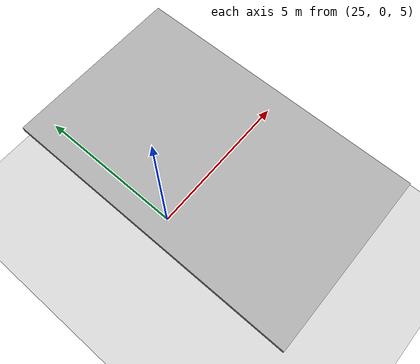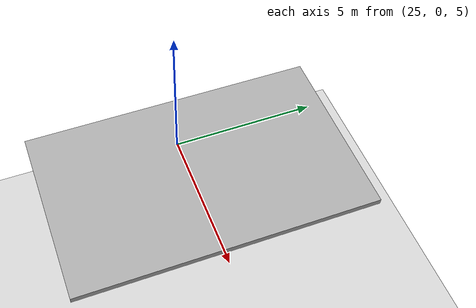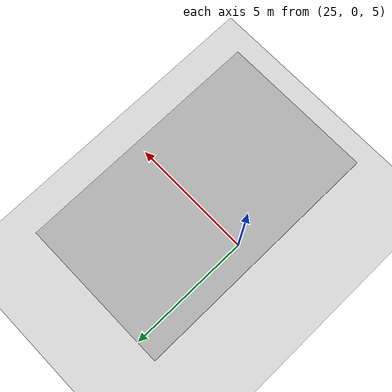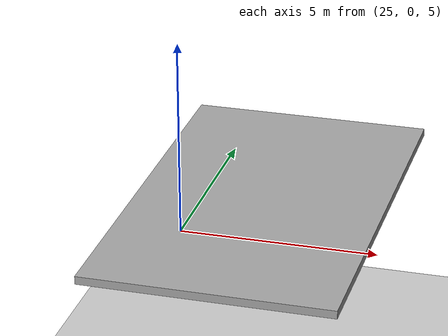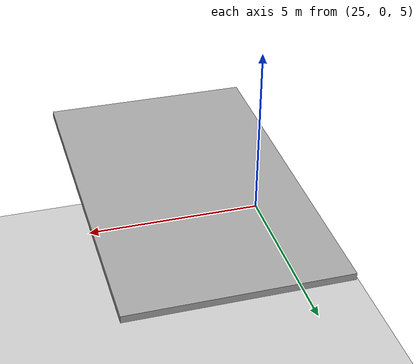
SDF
<?xml version="1.0" encoding="UTF-8"?>
<sdf version="1.9">
  <world name="tiltedwall">
    <physics type="ode">
      <max_step_size>0.004</max_step_size>
      <real_time_factor>1.0</real_time_factor>
      <real_time_update_rate>250</real_time_update_rate>
    </physics>
    <plugin name="gz::sim::systems::Physics" filename="gz-sim-physics-system"/>
    <plugin name="gz::sim::systems::UserCommands" filename="gz-sim-user-commands-system"/>
    <plugin name="gz::sim::systems::SceneBroadcaster" filename="gz-sim-scene-broadcaster-system"/>
    <plugin name="gz::sim::systems::Contact" filename="gz-sim-contact-system"/>
    <plugin name="gz::sim::systems::Imu" filename="gz-sim-imu-system"/>
    <plugin name="gz::sim::systems::ForceTorque" filename="gz-sim-forcetorque-system"/>
    <plugin name="gz::sim::systems::AirPressure" filename="gz-sim-air-pressure-system"/>
    <plugin name="gz::sim::systems::ApplyLinkWrench" filename="gz-sim-apply-link-wrench-system"/>
    <plugin name="gz::sim::systems::NavSat" filename="gz-sim-navsat-system"/>
    <plugin name="gz::sim::systems::Sensors" filename="gz-sim-sensors-system">
      <render_engine>ogre2</render_engine>
    </plugin>
    <gravity>0 0 -9.8</gravity>
    <magnetic_field>6e-06 2.3e-05 -4.2e-05</magnetic_field>
    <atmosphere type="adiabatic"/>
    <scene>
      <grid>false</grid>
      <ambient>0.4 0.4 0.4 1</ambient>
      <background>0.7 0.7 0.7 1</background>
      <shadows>true</shadows>
    </scene>
    <model name="ground_plane">
      <static>true</static>
      <link name="link">
        <collision name="collision">
          <geometry>
            <plane>
              <normal>0 0 1</normal>
              <size>1 1</size>
            </plane>
          </geometry>
          <surface>
            <friction>
              <ode/>
            </friction>
            <bounce/>
            <contact/>
          </surface>
        </collision>
        <visual name="visual">
          <geometry>
            <plane>
              <normal>0 0 1</normal>
              <size>100 100</size>
            </plane>
          </geometry>
          <material>
            <ambient>0.8 0.8 0.8 1</ambient>
            <diffuse>0.8 0.8 0.8 1</diffuse>
            <specular>0.8 0.8 0.8 1</specular>
          </material>
        </visual>
        <pose>0 0 0 0 -0 0</pose>
        <inertial>
          <pose>0 0 0 0 -0 0</pose>
          <mass>1</mass>
          <inertia>
            <ixx>1</ixx>
            <ixy>0</ixy>
            <ixz>0</ixz>
            <iyy>1</iyy>
            <iyz>0</iyz>
            <izz>1</izz>
          </inertia>
        </inertial>
        <enable_wind>true</enable_wind>
      </link>
      <pose>0 0 0 0 -0 0</pose>
      <self_collide>false</self_collide>
    </model>
    <model name="tiltedwall">
      <static>true</static>
      <pose degrees="true">27.1 0 6.1 0 90 0</pose>
      <link name="wall_link">
        <visual name="wall_visual">
          <geometry>
            <box>
              <size>0.2 10.0 6.096</size>
            </box>
          </geometry>
          <material>
            <ambient>0.65 0.65 0.65 1</ambient>
            <diffuse>0.65 0.65 0.65 1</diffuse>
            <specular>0.05 0.05 0.05 1</specular>
          </material>
        </visual>
        <collision name="wall_collision">
          <geometry>
            <box>
              <size>0.2 10.0 6.096</size>
            </box>
          </geometry>
          <surface>
            <friction>
              <ode>
                <mu>0.6</mu>
                <mu2>0.6</mu2>
              </ode>
              <bullet>
                <friction>0.6</friction>
                <friction2>0.6</friction2>
              </bullet>
            </friction>
          </surface>
        </collision>
      </link>
    </model>
    <light name="sunUTC" type="directional">
      <pose>0 0 500 0 -0 0</pose>
      <cast_shadows>true</cast_shadows>
      <intensity>1</intensity>
      <direction>0.001 0.625 -0.78</direction>
      <diffuse>0.904 0.904 0.904 1</diffuse>
      <specular>0.271 0.271 0.271 1</specular>
      <attenuation>
        <range>2000</range>
        <linear>0</linear>
        <constant>1</constant>
        <quadratic>0</quadratic>
      </attenuation>
      <spot>
        <inner_angle>0</inner_angle>
        <outer_angle>0</outer_angle>
        <falloff>0</falloff>
      </spot>
    </light>
    <spherical_coordinates>
      <surface_model>EARTH_WGS84</surface_model>
      <world_frame_orientation>ENU</world_frame_orientation>
      <latitude_deg>47.397971057728974</latitude_deg>
      <longitude_deg> 8.546163739800146</longitude_deg>
      <elevation>0</elevation>
    </spherical_coordinates>
  </world>
</sdf>
